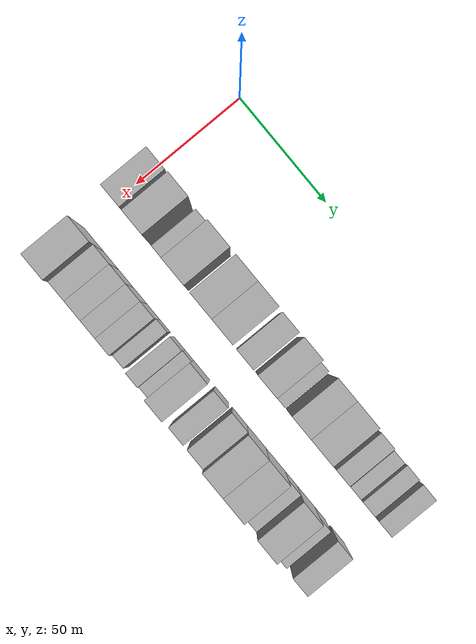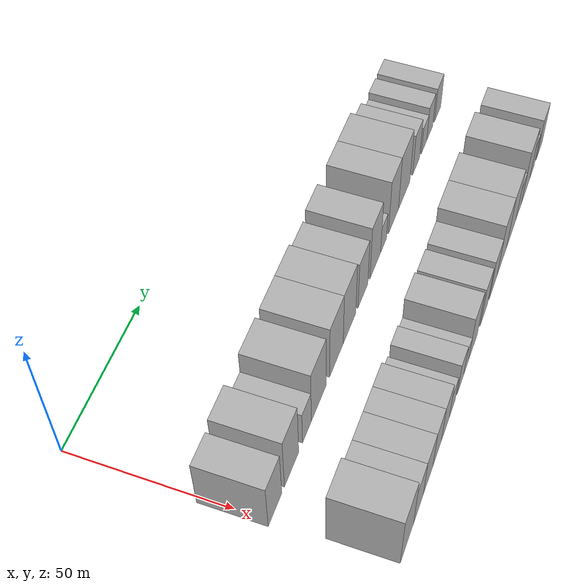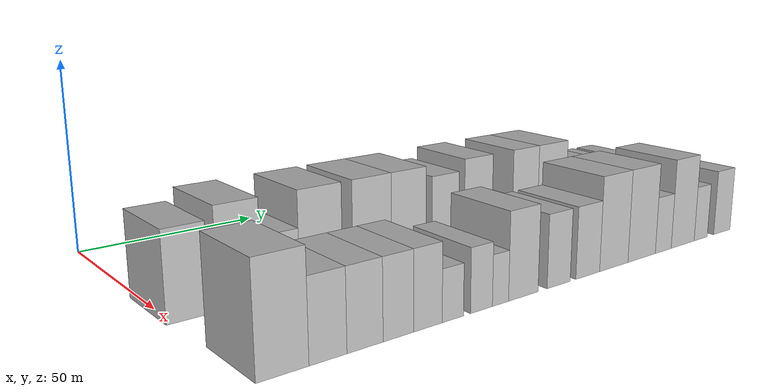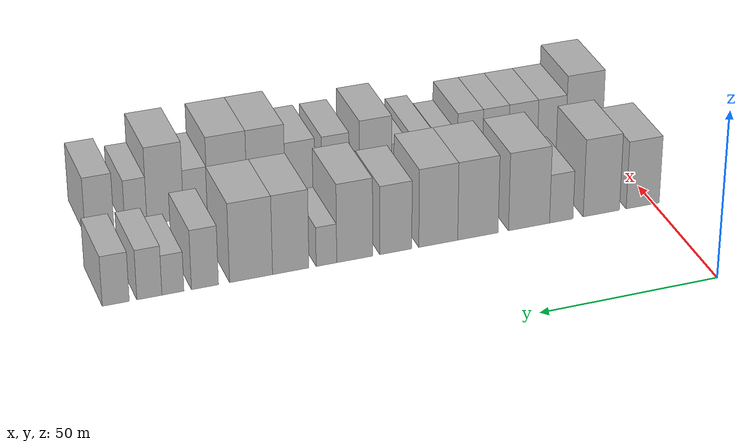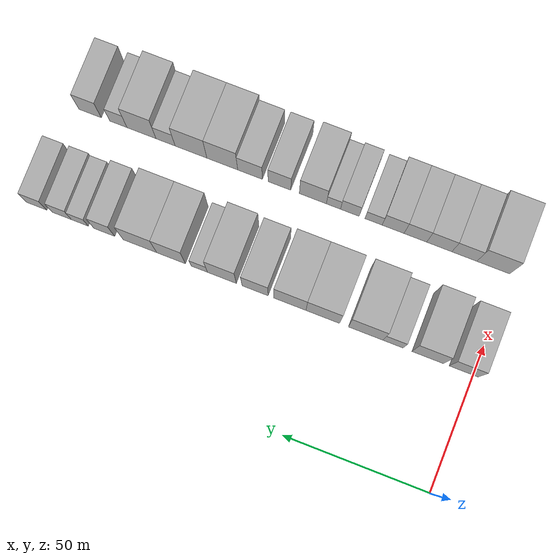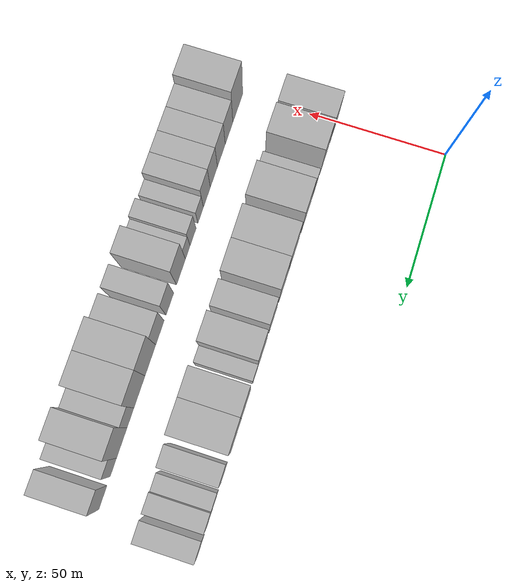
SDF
<sdf version="1.6">
 <world name="default">
  <model name="building_33">
   <static>1</static>
   <pose>50.0000 3.3126 0 0.000000 0.000000 0.000000</pose>
   <link name="link">
    <pose>0 0 10.50 0 0 0</pose>
    <collision name="collision"><geometry><box><size>20.0000 9.8631 21.0000</size></box></geometry></collision>
    <visual name="visual">
     <cast_shadows>0</cast_shadows>
     <geometry><box><size>20.0000 9.8631 21.0000</size></box></geometry>
     <material>
      <script>
       <uri>model://HANNAS_wall/materials/scripts</uri>
       <uri>model://HANNAS_wall/materials/textures</uri>
       <name>vrc/HANNAS_wall</name>
      </script>
     </material>
    </visual>
   </link>
  </model>
  <model name="building_34">
   <static>1</static>
   <pose>50.0000 15.6161 0 0.000000 0.000000 0.000000</pose>
   <link name="link">
    <pose>0 0 12.00 0 0 0</pose>
    <collision name="collision"><geometry><box><size>20.0000 10.7440 24.0000</size></box></geometry></collision>
    <visual name="visual">
     <cast_shadows>0</cast_shadows>
     <geometry><box><size>20.0000 10.7440 24.0000</size></box></geometry>
     <material>
      <script>
       <uri>model://HANNAS_wall/materials/scripts</uri>
       <uri>model://HANNAS_wall/materials/textures</uri>
       <name>vrc/HANNAS_wall</name>
      </script>
     </material>
    </visual>
   </link>
  </model>
  <model name="building_35">
   <static>1</static>
   <pose>50.0000 27.4346 0 0.000000 0.000000 0.000000</pose>
   <link name="link">
    <pose>0 0 7.50 0 0 0</pose>
    <collision name="collision"><geometry><box><size>20.0000 6.8929 15.0000</size></box></geometry></collision>
    <visual name="visual">
     <cast_shadows>0</cast_shadows>
     <geometry><box><size>20.0000 6.8929 15.0000</size></box></geometry>
     <material>
      <script>
       <uri>model://HANNAS_wall/materials/scripts</uri>
       <uri>model://HANNAS_wall/materials/textures</uri>
       <name>vrc/HANNAS_wall</name>
      </script>
     </material>
    </visual>
   </link>
  </model>
  <model name="building_36">
   <static>1</static>
   <pose>50.0000 36.8483 0 0.000000 0.000000 0.000000</pose>
   <link name="link">
    <pose>0 0 12.00 0 0 0</pose>
    <collision name="collision"><geometry><box><size>20.0000 11.9345 24.0000</size></box></geometry></collision>
    <visual name="visual">
     <cast_shadows>0</cast_shadows>
     <geometry><box><size>20.0000 11.9345 24.0000</size></box></geometry>
     <material>
      <script>
       <uri>model://HANNAS_wall/materials/scripts</uri>
       <uri>model://HANNAS_wall/materials/textures</uri>
       <name>vrc/HANNAS_wall</name>
      </script>
     </material>
    </visual>
   </link>
  </model>
  <model name="building_37">
   <static>1</static>
   <pose>50.0000 51.6234 0 0.000000 0.000000 0.000000</pose>
   <link name="link">
    <pose>0 0 12.00 0 0 0</pose>
    <collision name="collision"><geometry><box><size>20.0000 11.6156 24.0000</size></box></geometry></collision>
    <visual name="visual">
     <cast_shadows>0</cast_shadows>
     <geometry><box><size>20.0000 11.6156 24.0000</size></box></geometry>
     <material>
      <script>
       <uri>model://HANNAS_wall/materials/scripts</uri>
       <uri>model://HANNAS_wall/materials/textures</uri>
       <name>vrc/HANNAS_wall</name>
      </script>
     </material>
    </visual>
   </link>
  </model>
  <model name="building_38">
   <static>1</static>
   <pose>50.0000 62.9704 0 0.000000 0.000000 0.000000</pose>
   <link name="link">
    <pose>0 0 12.00 0 0 0</pose>
    <collision name="collision"><geometry><box><size>20.0000 11.0785 24.0000</size></box></geometry></collision>
    <visual name="visual">
     <cast_shadows>0</cast_shadows>
     <geometry><box><size>20.0000 11.0785 24.0000</size></box></geometry>
     <material>
      <script>
       <uri>model://HANNAS_wall/materials/scripts</uri>
       <uri>model://HANNAS_wall/materials/textures</uri>
       <name>vrc/HANNAS_wall</name>
      </script>
     </material>
    </visual>
   </link>
  </model>
  <model name="building_39">
   <static>1</static>
   <pose>50.0000 75.0191 0 0.000000 0.000000 0.000000</pose>
   <link name="link">
    <pose>0 0 10.50 0 0 0</pose>
    <collision name="collision"><geometry><box><size>20.0000 9.0189 21.0000</size></box></geometry></collision>
    <visual name="visual">
     <cast_shadows>0</cast_shadows>
     <geometry><box><size>20.0000 9.0189 21.0000</size></box></geometry>
     <material>
      <script>
       <uri>model://HANNAS_wall/materials/scripts</uri>
       <uri>model://HANNAS_wall/materials/textures</uri>
       <name>vrc/HANNAS_wall</name>
      </script>
     </material>
    </visual>
   </link>
  </model>
  <model name="building_40">
   <static>1</static>
   <pose>50.0000 86.5434 0 0.000000 0.000000 0.000000</pose>
   <link name="link">
    <pose>0 0 12.00 0 0 0</pose>
    <collision name="collision"><geometry><box><size>20.0000 10.0297 24.0000</size></box></geometry></collision>
    <visual name="visual">
     <cast_shadows>0</cast_shadows>
     <geometry><box><size>20.0000 10.0297 24.0000</size></box></geometry>
     <material>
      <script>
       <uri>model://HANNAS_wall/materials/scripts</uri>
       <uri>model://HANNAS_wall/materials/textures</uri>
       <name>vrc/HANNAS_wall</name>
      </script>
     </material>
    </visual>
   </link>
  </model>
  <model name="building_41">
   <static>1</static>
   <pose>50.0000 94.4103 0 0.000000 0.000000 0.000000</pose>
   <link name="link">
    <pose>0 0 6.00 0 0 0</pose>
    <collision name="collision"><geometry><box><size>20.0000 5.7042 12.0000</size></box></geometry></collision>
    <visual name="visual">
     <cast_shadows>0</cast_shadows>
     <geometry><box><size>20.0000 5.7042 12.0000</size></box></geometry>
     <material>
      <script>
       <uri>model://HANNAS_wall/materials/scripts</uri>
       <uri>model://HANNAS_wall/materials/textures</uri>
       <name>vrc/HANNAS_wall</name>
      </script>
     </material>
    </visual>
   </link>
  </model>
  <model name="building_42">
   <static>1</static>
   <pose>50.0000 104.2619 0 0.000000 0.000000 0.000000</pose>
   <link name="link">
    <pose>0 0 12.00 0 0 0</pose>
    <collision name="collision"><geometry><box><size>20.0000 9.9989 24.0000</size></box></geometry></collision>
    <visual name="visual">
     <cast_shadows>0</cast_shadows>
     <geometry><box><size>20.0000 9.9989 24.0000</size></box></geometry>
     <material>
      <script>
       <uri>model://HANNAS_wall/materials/scripts</uri>
       <uri>model://HANNAS_wall/materials/textures</uri>
       <name>vrc/HANNAS_wall</name>
      </script>
     </material>
    </visual>
   </link>
  </model>
  <model name="building_43">
   <static>1</static>
   <pose>50.0000 115.1232 0 0.000000 0.000000 0.000000</pose>
   <link name="link">
    <pose>0 0 12.00 0 0 0</pose>
    <collision name="collision"><geometry><box><size>20.0000 11.7238 24.0000</size></box></geometry></collision>
    <visual name="visual">
     <cast_shadows>0</cast_shadows>
     <geometry><box><size>20.0000 11.7238 24.0000</size></box></geometry>
     <material>
      <script>
       <uri>model://HANNAS_wall/materials/scripts</uri>
       <uri>model://HANNAS_wall/materials/textures</uri>
       <name>vrc/HANNAS_wall</name>
      </script>
     </material>
    </visual>
   </link>
  </model>
  <model name="building_44">
   <static>1</static>
   <pose>50.0000 127.6352 0 0.000000 0.000000 0.000000</pose>
   <link name="link">
    <pose>0 0 9.00 0 0 0</pose>
    <collision name="collision"><geometry><box><size>20.0000 7.3003 18.0000</size></box></geometry></collision>
    <visual name="visual">
     <cast_shadows>0</cast_shadows>
     <geometry><box><size>20.0000 7.3003 18.0000</size></box></geometry>
     <material>
      <script>
       <uri>model://HANNAS_wall/materials/scripts</uri>
       <uri>model://HANNAS_wall/materials/textures</uri>
       <name>vrc/HANNAS_wall</name>
      </script>
     </material>
    </visual>
   </link>
  </model>
  <model name="building_45">
   <static>1</static>
   <pose>50.0000 136.2377 0 0.000000 0.000000 0.000000</pose>
   <link name="link">
    <pose>0 0 6.00 0 0 0</pose>
    <collision name="collision"><geometry><box><size>20.0000 5.9046 12.0000</size></box></geometry></collision>
    <visual name="visual">
     <cast_shadows>0</cast_shadows>
     <geometry><box><size>20.0000 5.9046 12.0000</size></box></geometry>
     <material>
      <script>
       <uri>model://HANNAS_wall/materials/scripts</uri>
       <uri>model://HANNAS_wall/materials/textures</uri>
       <name>vrc/HANNAS_wall</name>
      </script>
     </material>
    </visual>
   </link>
  </model>
  <model name="building_46">
   <static>1</static>
   <pose>50.0000 142.5359 0 0.000000 0.000000 0.000000</pose>
   <link name="link">
    <pose>0 0 7.50 0 0 0</pose>
    <collision name="collision"><geometry><box><size>20.0000 6.6918 15.0000</size></box></geometry></collision>
    <visual name="visual">
     <cast_shadows>0</cast_shadows>
     <geometry><box><size>20.0000 6.6918 15.0000</size></box></geometry>
     <material>
      <script>
       <uri>model://HANNAS_wall/materials/scripts</uri>
       <uri>model://HANNAS_wall/materials/textures</uri>
       <name>vrc/HANNAS_wall</name>
      </script>
     </material>
    </visual>
   </link>
  </model>
  <model name="building_47">
   <static>1</static>
   <pose>50.0000 151.4542 0 0.000000 0.000000 0.000000</pose>
   <link name="link">
    <pose>0 0 7.50 0 0 0</pose>
    <collision name="collision"><geometry><box><size>20.0000 7.1450 15.0000</size></box></geometry></collision>
    <visual name="visual">
     <cast_shadows>0</cast_shadows>
     <geometry><box><size>20.0000 7.1450 15.0000</size></box></geometry>
     <material>
      <script>
       <uri>model://HANNAS_wall/materials/scripts</uri>
       <uri>model://HANNAS_wall/materials/textures</uri>
       <name>vrc/HANNAS_wall</name>
      </script>
     </material>
    </visual>
   </link>
  </model>
  <model name="building_99">
   <static>1</static>
   <pose>85.0000 5.9352 0 0.000000 0.000000 0.000000</pose>
   <link name="link">
    <pose>0 0 12.00 0 0 0</pose>
    <collision name="collision"><geometry><box><size>20.0000 11.3335 24.0000</size></box></geometry></collision>
    <visual name="visual">
     <cast_shadows>0</cast_shadows>
     <geometry><box><size>20.0000 11.3335 24.0000</size></box></geometry>
     <material>
      <script>
       <uri>model://HANNAS_wall/materials/scripts</uri>
       <uri>model://HANNAS_wall/materials/textures</uri>
       <name>vrc/HANNAS_wall</name>
      </script>
     </material>
    </visual>
   </link>
  </model>
  <model name="building_100">
   <static>1</static>
   <pose>85.0000 15.9146 0 0.000000 0.000000 0.000000</pose>
   <link name="link">
    <pose>0 0 9.00 0 0 0</pose>
    <collision name="collision"><geometry><box><size>20.0000 8.6254 18.0000</size></box></geometry></collision>
    <visual name="visual">
     <cast_shadows>0</cast_shadows>
     <geometry><box><size>20.0000 8.6254 18.0000</size></box></geometry>
     <material>
      <script>
       <uri>model://HANNAS_wall/materials/scripts</uri>
       <uri>model://HANNAS_wall/materials/textures</uri>
       <name>vrc/HANNAS_wall</name>
      </script>
     </material>
    </visual>
   </link>
  </model>
  <model name="building_101">
   <static>1</static>
   <pose>85.0000 24.5877 0 0.000000 0.000000 0.000000</pose>
   <link name="link">
    <pose>0 0 9.00 0 0 0</pose>
    <collision name="collision"><geometry><box><size>20.0000 8.7207 18.0000</size></box></geometry></collision>
    <visual name="visual">
     <cast_shadows>0</cast_shadows>
     <geometry><box><size>20.0000 8.7207 18.0000</size></box></geometry>
     <material>
      <script>
       <uri>model://HANNAS_wall/materials/scripts</uri>
       <uri>model://HANNAS_wall/materials/textures</uri>
       <name>vrc/HANNAS_wall</name>
      </script>
     </material>
    </visual>
   </link>
  </model>
  <model name="building_102">
   <static>1</static>
   <pose>85.0000 32.8744 0 0.000000 0.000000 0.000000</pose>
   <link name="link">
    <pose>0 0 9.00 0 0 0</pose>
    <collision name="collision"><geometry><box><size>20.0000 7.8527 18.0000</size></box></geometry></collision>
    <visual name="visual">
     <cast_shadows>0</cast_shadows>
     <geometry><box><size>20.0000 7.8527 18.0000</size></box></geometry>
     <material>
      <script>
       <uri>model://HANNAS_wall/materials/scripts</uri>
       <uri>model://HANNAS_wall/materials/textures</uri>
       <name>vrc/HANNAS_wall</name>
      </script>
     </material>
    </visual>
   </link>
  </model>
  <model name="building_103">
   <static>1</static>
   <pose>85.0000 40.5969 0 0.000000 0.000000 0.000000</pose>
   <link name="link">
    <pose>0 0 9.00 0 0 0</pose>
    <collision name="collision"><geometry><box><size>20.0000 7.5923 18.0000</size></box></geometry></collision>
    <visual name="visual">
     <cast_shadows>0</cast_shadows>
     <geometry><box><size>20.0000 7.5923 18.0000</size></box></geometry>
     <material>
      <script>
       <uri>model://HANNAS_wall/materials/scripts</uri>
       <uri>model://HANNAS_wall/materials/textures</uri>
       <name>vrc/HANNAS_wall</name>
      </script>
     </material>
    </visual>
   </link>
  </model>
  <model name="building_104">
   <static>1</static>
   <pose>85.0000 47.3845 0 0.000000 0.000000 0.000000</pose>
   <link name="link">
    <pose>0 0 6.00 0 0 0</pose>
    <collision name="collision"><geometry><box><size>20.0000 5.9830 12.0000</size></box></geometry></collision>
    <visual name="visual">
     <cast_shadows>0</cast_shadows>
     <geometry><box><size>20.0000 5.9830 12.0000</size></box></geometry>
     <material>
      <script>
       <uri>model://HANNAS_wall/materials/scripts</uri>
       <uri>model://HANNAS_wall/materials/textures</uri>
       <name>vrc/HANNAS_wall</name>
      </script>
     </material>
    </visual>
   </link>
  </model>
  <model name="building_105">
   <static>1</static>
   <pose>85.0000 55.6219 0 0.000000 0.000000 0.000000</pose>
   <link name="link">
    <pose>0 0 7.50 0 0 0</pose>
    <collision name="collision"><geometry><box><size>20.0000 6.4918 15.0000</size></box></geometry></collision>
    <visual name="visual">
     <cast_shadows>0</cast_shadows>
     <geometry><box><size>20.0000 6.4918 15.0000</size></box></geometry>
     <material>
      <script>
       <uri>model://HANNAS_wall/materials/scripts</uri>
       <uri>model://HANNAS_wall/materials/textures</uri>
       <name>vrc/HANNAS_wall</name>
      </script>
     </material>
    </visual>
   </link>
  </model>
  <model name="building_106">
   <static>1</static>
   <pose>85.0000 61.3439 0 0.000000 0.000000 0.000000</pose>
   <link name="link">
    <pose>0 0 6.00 0 0 0</pose>
    <collision name="collision"><geometry><box><size>20.0000 4.9521 12.0000</size></box></geometry></collision>
    <visual name="visual">
     <cast_shadows>0</cast_shadows>
     <geometry><box><size>20.0000 4.9521 12.0000</size></box></geometry>
     <material>
      <script>
       <uri>model://HANNAS_wall/materials/scripts</uri>
       <uri>model://HANNAS_wall/materials/textures</uri>
       <name>vrc/HANNAS_wall</name>
      </script>
     </material>
    </visual>
   </link>
  </model>
  <model name="building_107">
   <static>1</static>
   <pose>85.0000 68.5449 0 0.000000 0.000000 0.000000</pose>
   <link name="link">
    <pose>0 0 10.50 0 0 0</pose>
    <collision name="collision"><geometry><box><size>20.0000 9.4499 21.0000</size></box></geometry></collision>
    <visual name="visual">
     <cast_shadows>0</cast_shadows>
     <geometry><box><size>20.0000 9.4499 21.0000</size></box></geometry>
     <material>
      <script>
       <uri>model://HANNAS_wall/materials/scripts</uri>
       <uri>model://HANNAS_wall/materials/textures</uri>
       <name>vrc/HANNAS_wall</name>
      </script>
     </material>
    </visual>
   </link>
  </model>
  <model name="building_108">
   <static>1</static>
   <pose>85.0000 80.2323 0 0.000000 0.000000 0.000000</pose>
   <link name="link">
    <pose>0 0 9.00 0 0 0</pose>
    <collision name="collision"><geometry><box><size>20.0000 7.9249 18.0000</size></box></geometry></collision>
    <visual name="visual">
     <cast_shadows>0</cast_shadows>
     <geometry><box><size>20.0000 7.9249 18.0000</size></box></geometry>
     <material>
      <script>
       <uri>model://HANNAS_wall/materials/scripts</uri>
       <uri>model://HANNAS_wall/materials/textures</uri>
       <name>vrc/HANNAS_wall</name>
      </script>
     </material>
    </visual>
   </link>
  </model>
  <model name="building_109">
   <static>1</static>
   <pose>85.0000 90.5266 0 0.000000 0.000000 0.000000</pose>
   <link name="link">
    <pose>0 0 9.00 0 0 0</pose>
    <collision name="collision"><geometry><box><size>20.0000 8.6637 18.0000</size></box></geometry></collision>
    <visual name="visual">
     <cast_shadows>0</cast_shadows>
     <geometry><box><size>20.0000 8.6637 18.0000</size></box></geometry>
     <material>
      <script>
       <uri>model://HANNAS_wall/materials/scripts</uri>
       <uri>model://HANNAS_wall/materials/textures</uri>
       <name>vrc/HANNAS_wall</name>
      </script>
     </material>
    </visual>
   </link>
  </model>
  <model name="building_110">
   <static>1</static>
   <pose>85.0000 100.3017 0 0.000000 0.000000 0.000000</pose>
   <link name="link">
    <pose>0 0 12.00 0 0 0</pose>
    <collision name="collision"><geometry><box><size>20.0000 10.8865 24.0000</size></box></geometry></collision>
    <visual name="visual">
     <cast_shadows>0</cast_shadows>
     <geometry><box><size>20.0000 10.8865 24.0000</size></box></geometry>
     <material>
      <script>
       <uri>model://HANNAS_wall/materials/scripts</uri>
       <uri>model://HANNAS_wall/materials/textures</uri>
       <name>vrc/HANNAS_wall</name>
      </script>
     </material>
    </visual>
   </link>
  </model>
  <model name="building_111">
   <static>1</static>
   <pose>85.0000 111.3383 0 0.000000 0.000000 0.000000</pose>
   <link name="link">
    <pose>0 0 12.00 0 0 0</pose>
    <collision name="collision"><geometry><box><size>20.0000 11.1868 24.0000</size></box></geometry></collision>
    <visual name="visual">
     <cast_shadows>0</cast_shadows>
     <geometry><box><size>20.0000 11.1868 24.0000</size></box></geometry>
     <material>
      <script>
       <uri>model://HANNAS_wall/materials/scripts</uri>
       <uri>model://HANNAS_wall/materials/textures</uri>
       <name>vrc/HANNAS_wall</name>
      </script>
     </material>
    </visual>
   </link>
  </model>
  <model name="building_112">
   <static>1</static>
   <pose>85.0000 120.3195 0 0.000000 0.000000 0.000000</pose>
   <link name="link">
    <pose>0 0 7.50 0 0 0</pose>
    <collision name="collision"><geometry><box><size>20.0000 6.7756 15.0000</size></box></geometry></collision>
    <visual name="visual">
     <cast_shadows>0</cast_shadows>
     <geometry><box><size>20.0000 6.7756 15.0000</size></box></geometry>
     <material>
      <script>
       <uri>model://HANNAS_wall/materials/scripts</uri>
       <uri>model://HANNAS_wall/materials/textures</uri>
       <name>vrc/HANNAS_wall</name>
      </script>
     </material>
    </visual>
   </link>
  </model>
  <model name="building_113">
   <static>1</static>
   <pose>85.0000 128.8410 0 0.000000 0.000000 0.000000</pose>
   <link name="link">
    <pose>0 0 12.00 0 0 0</pose>
    <collision name="collision"><geometry><box><size>20.0000 10.2673 24.0000</size></box></geometry></collision>
    <visual name="visual">
     <cast_shadows>0</cast_shadows>
     <geometry><box><size>20.0000 10.2673 24.0000</size></box></geometry>
     <material>
      <script>
       <uri>model://HANNAS_wall/materials/scripts</uri>
       <uri>model://HANNAS_wall/materials/textures</uri>
       <name>vrc/HANNAS_wall</name>
      </script>
     </material>
    </visual>
   </link>
  </model>
  <model name="building_114">
   <static>1</static>
   <pose>85.0000 137.0427 0 0.000000 0.000000 0.000000</pose>
   <link name="link">
    <pose>0 0 7.50 0 0 0</pose>
    <collision name="collision"><geometry><box><size>20.0000 6.1362 15.0000</size></box></geometry></collision>
    <visual name="visual">
     <cast_shadows>0</cast_shadows>
     <geometry><box><size>20.0000 6.1362 15.0000</size></box></geometry>
     <material>
      <script>
       <uri>model://HANNAS_wall/materials/scripts</uri>
       <uri>model://HANNAS_wall/materials/textures</uri>
       <name>vrc/HANNAS_wall</name>
      </script>
     </material>
    </visual>
   </link>
  </model>
  <model name="building_115">
   <static>1</static>
   <pose>85.0000 147.0984 0 0.000000 0.000000 0.000000</pose>
   <link name="link">
    <pose>0 0 9.00 0 0 0</pose>
    <collision name="collision"><geometry><box><size>20.0000 7.9753 18.0000</size></box></geometry></collision>
    <visual name="visual">
     <cast_shadows>0</cast_shadows>
     <geometry><box><size>20.0000 7.9753 18.0000</size></box></geometry>
     <material>
      <script>
       <uri>model://HANNAS_wall/materials/scripts</uri>
       <uri>model://HANNAS_wall/materials/textures</uri>
       <name>vrc/HANNAS_wall</name>
      </script>
     </material>
    </visual>
   </link>
  </model>
 </world>
</sdf>
